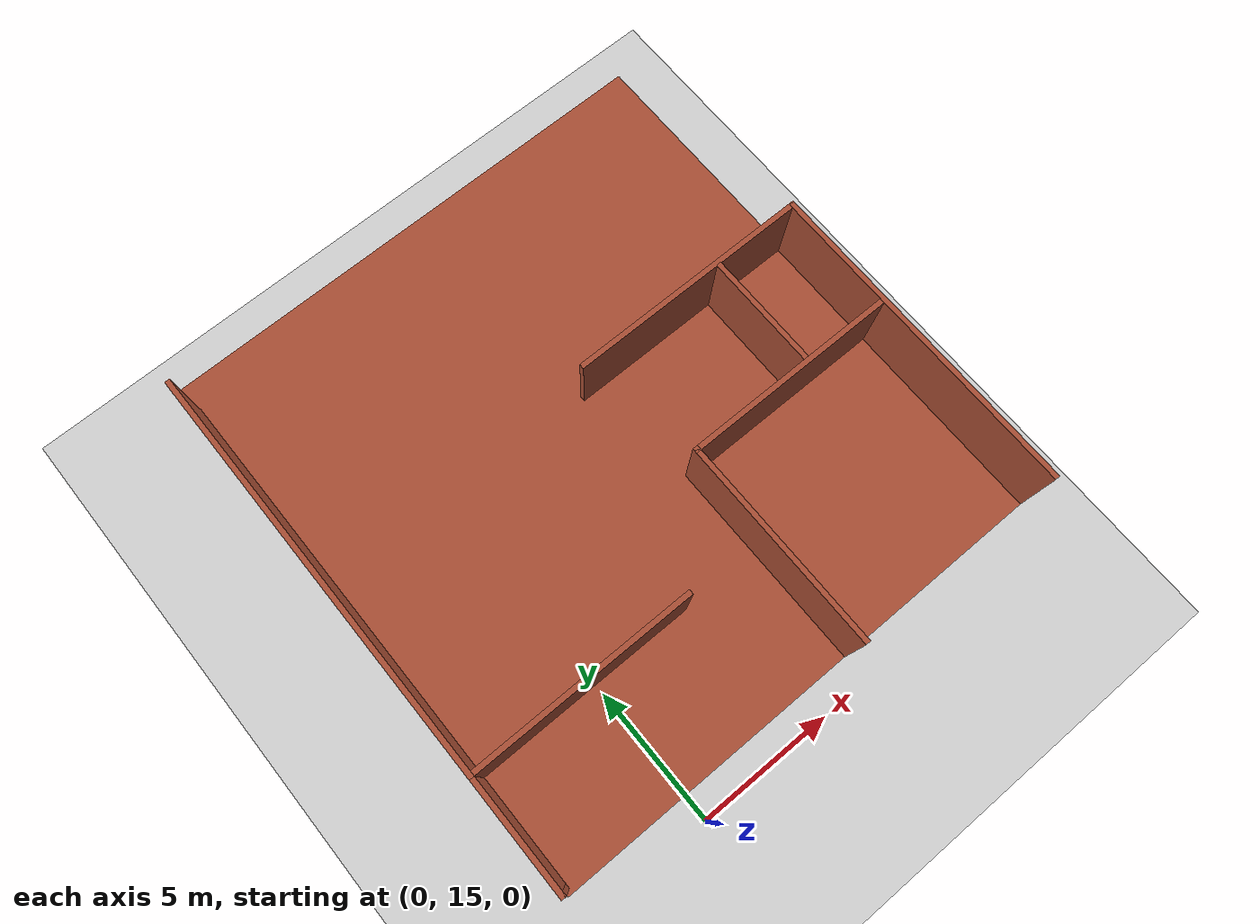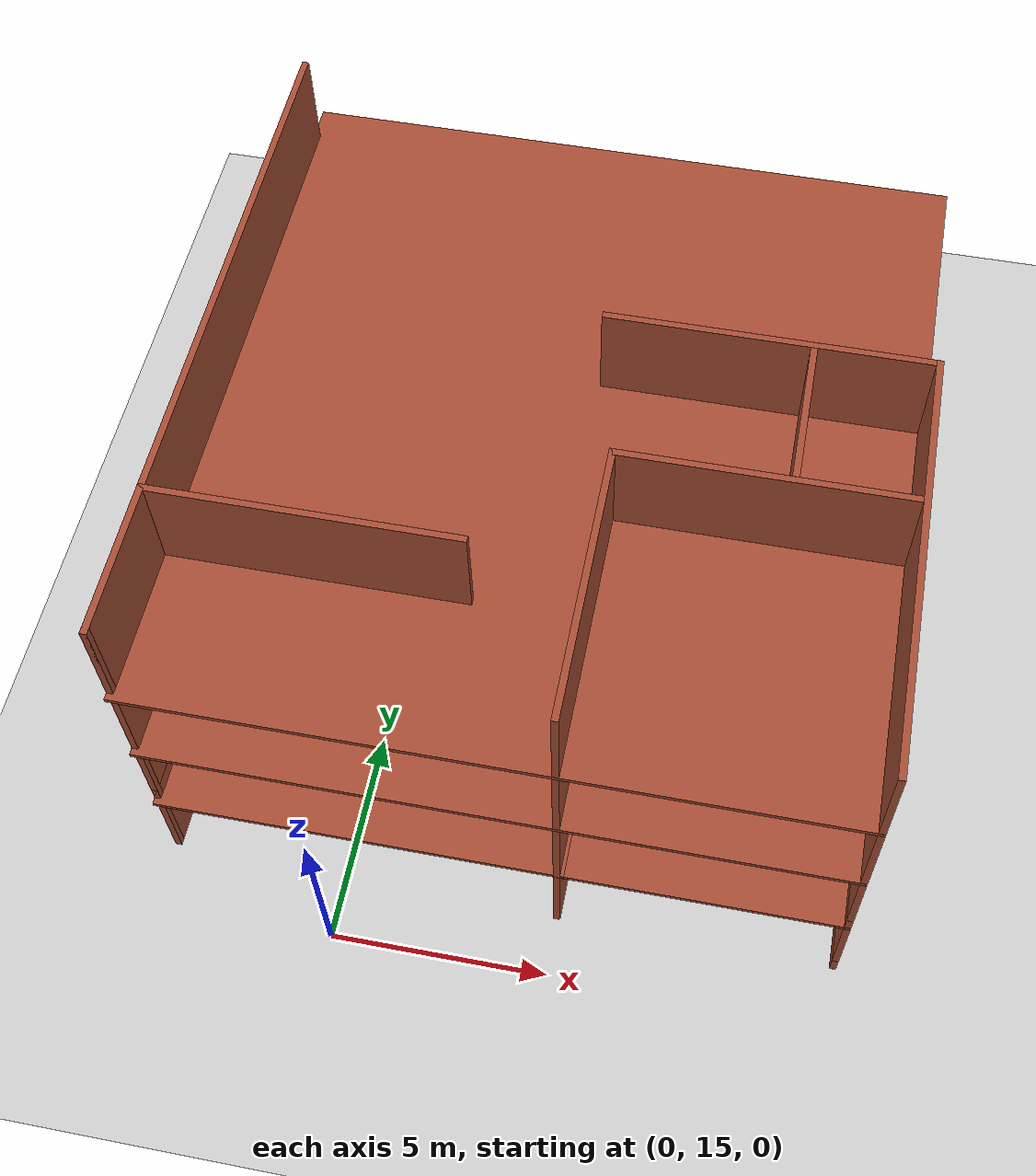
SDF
<sdf version="1.7">
 <world name="default">
  <model name="ground_plane">
   <static>1</static>
   <link name="link">
    <collision name="collision">
     <geometry><plane><normal>0 0 1</normal><size>300 300</size></plane></geometry>
     <surface>
      <contact><collide_bitmask>65535</collide_bitmask></contact>
      <friction><ode><mu>100</mu><mu2>50</mu2></ode></friction>
     </surface>
    </collision>
    <visual name="visual">
     <cast_shadows>0</cast_shadows>
     <geometry><plane><normal>0 0 1</normal><size>300 300</size></plane></geometry>
     <material>
      <script><uri>file://media/materials/scripts/gazebo.material</uri><name>Gazebo/Grey</name></script>
     </material>
    </visual>
   </link>
  </model>
  <model name="Drone_House_1">
   <pose>3.61083 24.7733 0 0 -0 0</pose>
   <link name="Floor_0">
    <pose>-1e-06 0 2.5 0 -0 0</pose>
    <visual name="Floor_0_Visual_0">
     <pose>-3.13292 0 0.05 0 -0 0</pose>
     <geometry><box><size>9.33629 16.85 0.1</size></box></geometry>
     <material>
      <script><uri>file://media/materials/scripts/gazebo.material</uri><name>Gazebo/Bricks</name></script>
      <ambient>1 1 1 1</ambient>
     </material>
     <meta><layer>1</layer></meta>
    </visual>
    <collision name="Floor_0_Collision_0">
     <geometry><box><size>9.33629 16.85 0.1</size></box></geometry>
     <pose>-3.13292 0 0.05 0 -0 0</pose>
    </collision>
    <visual name="Floor_0_Visual_1">
     <pose>4.66814 -4.13229 0.05 0 -0 0</pose>
     <geometry><box><size>6.26584 8.58542 0.1</size></box></geometry>
     <material>
      <script><uri>file://media/materials/scripts/gazebo.material</uri><name>Gazebo/Bricks</name></script>
      <ambient>1 1 1 1</ambient>
     </material>
     <meta><layer>1</layer></meta>
    </visual>
    <collision name="Floor_0_Collision_1">
     <geometry><box><size>6.26584 8.58542 0.1</size></box></geometry>
     <pose>4.66814 -4.13229 0.05 0 -0 0</pose>
    </collision>
    <visual name="Floor_0_Visual_2">
     <pose>6.41814 4.29271 0.05 0 -0 0</pose>
     <geometry><box><size>2.76584 8.26458 0.1</size></box></geometry>
     <material>
      <script><uri>file://media/materials/scripts/gazebo.material</uri><name>Gazebo/Bricks</name></script>
      <ambient>1 1 1 1</ambient>
     </material>
     <meta><layer>1</layer></meta>
    </visual>
    <collision name="Floor_0_Collision_2">
     <geometry><box><size>2.76584 8.26458 0.1</size></box></geometry>
     <pose>6.41814 4.29271 0.05 0 -0 0</pose>
    </collision>
    <visual name="Floor_0_Visual_3">
     <pose>3.28522 4.79271 0.05 0 -0 0</pose>
     <geometry><box><size>3.5 7.26458 0.1</size></box></geometry>
     <material>
      <script><uri>file://media/materials/scripts/gazebo.material</uri><name>Gazebo/Bricks</name></script>
      <ambient>1 1 1 1</ambient>
     </material>
     <meta><layer>1</layer></meta>
    </visual>
    <collision name="Floor_0_Collision_3">
     <geometry><box><size>3.5 7.26458 0.1</size></box></geometry>
     <pose>3.28522 4.79271 0.05 0 -0 0</pose>
    </collision>
   </link>
   <link name="Floor_5">
    <collision name="Floor_5_Collision">
     <geometry><box><size>15.6021 16.85 0.1</size></box></geometry>
     <pose>0 0 0.05 0 -0 0</pose>
    </collision>
    <visual name="Floor_5_Visual">
     <pose>0 0 0.05 0 -0 0</pose>
     <geometry><box><size>15.6021 16.85 0.1</size></box></geometry>
     <material>
      <script><uri>file://media/materials/scripts/gazebo.material</uri><name>Gazebo/Bricks</name></script>
      <ambient>1 1 1 1</ambient>
     </material>
     <meta><layer>2</layer></meta>
    </visual>
    <pose>-1e-06 0 5 0 -0 0</pose>
   </link>
   <link name="Floor_6">
    <collision name="Floor_6_Collision">
     <geometry><box><size>15.6021 16.85 0.1</size></box></geometry>
     <pose>0 0 0.05 0 -0 0</pose>
    </collision>
    <visual name="Floor_6_Visual">
     <pose>0 0 0.05 0 -0 0</pose>
     <geometry><box><size>15.6021 16.85 0.1</size></box></geometry>
     <material>
      <script><uri>file://media/materials/scripts/gazebo.material</uri><name>Gazebo/Bricks</name></script>
      <ambient>1 1 1 1</ambient>
     </material>
     <meta><layer>3</layer></meta>
    </visual>
    <pose>-1e-06 0 7.5 0 -0 0</pose>
   </link>
   <link name="Stairs_0">
    <visual name="Stairs_0_Visual_0">
     <pose>4.91856 0.660416 0.083333 0 -0 -1.5708</pose>
     <geometry><box><size>1 0.233333 0.166667</size></box></geometry>
     <material>
      <script><uri>file://media/materials/scripts/gazebo.material</uri><name>Gazebo/Bricks</name></script>
      <ambient>1 1 1 1</ambient>
     </material>
     <meta><layer>0</layer></meta>
    </visual>
    <collision name="Stairs_0_Collision_0">
     <geometry><box><size>1 0.233333 0.166667</size></box></geometry>
     <pose>4.91856 0.660416 0.083333 0 -0 -1.5708</pose>
    </collision>
    <visual name="Stairs_0_Visual_1">
     <pose>4.68522 0.660416 0.25 0 -0 -1.5708</pose>
     <geometry><box><size>1 0.233333 0.166667</size></box></geometry>
     <material>
      <script><uri>file://media/materials/scripts/gazebo.material</uri><name>Gazebo/Bricks</name></script>
      <ambient>1 1 1 1</ambient>
     </material>
     <meta><layer>0</layer></meta>
    </visual>
    <collision name="Stairs_0_Collision_1">
     <geometry><box><size>1 0.233333 0.166667</size></box></geometry>
     <pose>4.68522 0.660416 0.25 0 -0 -1.5708</pose>
    </collision>
    <visual name="Stairs_0_Visual_2">
     <pose>4.45189 0.660416 0.416667 0 -0 -1.5708</pose>
     <geometry><box><size>1 0.233333 0.166667</size></box></geometry>
     <material>
      <script><uri>file://media/materials/scripts/gazebo.material</uri><name>Gazebo/Bricks</name></script>
      <ambient>1 1 1 1</ambient>
     </material>
     <meta><layer>0</layer></meta>
    </visual>
    <collision name="Stairs_0_Collision_2">
     <geometry><box><size>1 0.233333 0.166667</size></box></geometry>
     <pose>4.45189 0.660416 0.416667 0 -0 -1.5708</pose>
    </collision>
    <visual name="Stairs_0_Visual_3">
     <pose>4.21856 0.660416 0.583333 0 -0 -1.5708</pose>
     <geometry><box><size>1 0.233333 0.166667</size></box></geometry>
     <material>
      <script><uri>file://media/materials/scripts/gazebo.material</uri><name>Gazebo/Bricks</name></script>
      <ambient>1 1 1 1</ambient>
     </material>
     <meta><layer>0</layer></meta>
    </visual>
    <collision name="Stairs_0_Collision_3">
     <geometry><box><size>1 0.233333 0.166667</size></box></geometry>
     <pose>4.21856 0.660416 0.583333 0 -0 -1.5708</pose>
    </collision>
    <visual name="Stairs_0_Visual_4">
     <pose>3.98522 0.660417 0.75 0 -0 -1.5708</pose>
     <geometry><box><size>1 0.233333 0.166667</size></box></geometry>
     <material>
      <script><uri>file://media/materials/scripts/gazebo.material</uri><name>Gazebo/Bricks</name></script>
      <ambient>1 1 1 1</ambient>
     </material>
     <meta><layer>0</layer></meta>
    </visual>
    <collision name="Stairs_0_Collision_4">
     <geometry><box><size>1 0.233333 0.166667</size></box></geometry>
     <pose>3.98522 0.660417 0.75 0 -0 -1.5708</pose>
    </collision>
    <visual name="Stairs_0_Visual_5">
     <pose>3.75189 0.660417 0.916667 0 -0 -1.5708</pose>
     <geometry><box><size>1 0.233333 0.166667</size></box></geometry>
     <material>
      <script><uri>file://media/materials/scripts/gazebo.material</uri><name>Gazebo/Bricks</name></script>
      <ambient>1 1 1 1</ambient>
     </material>
     <meta><layer>0</layer></meta>
    </visual>
    <collision name="Stairs_0_Collision_5">
     <geometry><box><size>1 0.233333 0.166667</size></box></geometry>
     <pose>3.75189 0.660417 0.916667 0 -0 -1.5708</pose>
    </collision>
    <visual name="Stairs_0_Visual_6">
     <pose>3.51856 0.660417 1.08333 0 -0 -1.5708</pose>
     <geometry><box><size>1 0.233333 0.166667</size></box></geometry>
     <material>
      <script><uri>file://media/materials/scripts/gazebo.material</uri><name>Gazebo/Bricks</name></script>
      <ambient>1 1 1 1</ambient>
     </material>
     <meta><layer>0</layer></meta>
    </visual>
    <collision name="Stairs_0_Collision_6">
     <geometry><box><size>1 0.233333 0.166667</size></box></geometry>
     <pose>3.51856 0.660417 1.08333 0 -0 -1.5708</pose>
    </collision>
    <visual name="Stairs_0_Visual_7">
     <pose>3.28522 0.660417 1.25 0 -0 -1.5708</pose>
     <geometry><box><size>1 0.233333 0.166667</size></box></geometry>
     <material>
      <script><uri>file://media/materials/scripts/gazebo.material</uri><name>Gazebo/Bricks</name></script>
      <ambient>1 1 1 1</ambient>
     </material>
     <meta><layer>0</layer></meta>
    </visual>
    <collision name="Stairs_0_Collision_7">
     <geometry><box><size>1 0.233333 0.166667</size></box></geometry>
     <pose>3.28522 0.660417 1.25 0 -0 -1.5708</pose>
    </collision>
    <visual name="Stairs_0_Visual_8">
     <pose>3.05189 0.660417 1.41667 0 -0 -1.5708</pose>
     <geometry><box><size>1 0.233333 0.166667</size></box></geometry>
     <material>
      <script><uri>file://media/materials/scripts/gazebo.material</uri><name>Gazebo/Bricks</name></script>
      <ambient>1 1 1 1</ambient>
     </material>
     <meta><layer>0</layer></meta>
    </visual>
    <collision name="Stairs_0_Collision_8">
     <geometry><box><size>1 0.233333 0.166667</size></box></geometry>
     <pose>3.05189 0.660417 1.41667 0 -0 -1.5708</pose>
    </collision>
    <visual name="Stairs_0_Visual_9">
     <pose>2.81856 0.660417 1.58333 0 -0 -1.5708</pose>
     <geometry><box><size>1 0.233333 0.166667</size></box></geometry>
     <material>
      <script><uri>file://media/materials/scripts/gazebo.material</uri><name>Gazebo/Bricks</name></script>
      <ambient>1 1 1 1</ambient>
     </material>
     <meta><layer>0</layer></meta>
    </visual>
    <collision name="Stairs_0_Collision_9">
     <geometry><box><size>1 0.233333 0.166667</size></box></geometry>
     <pose>2.81856 0.660417 1.58333 0 -0 -1.5708</pose>
    </collision>
    <visual name="Stairs_0_Visual_10">
     <pose>2.58522 0.660417 1.75 0 -0 -1.5708</pose>
     <geometry><box><size>1 0.233333 0.166667</size></box></geometry>
     <material>
      <script><uri>file://media/materials/scripts/gazebo.material</uri><name>Gazebo/Bricks</name></script>
      <ambient>1 1 1 1</ambient>
     </material>
     <meta><layer>0</layer></meta>
    </visual>
    <collision name="Stairs_0_Collision_10">
     <geometry><box><size>1 0.233333 0.166667</size></box></geometry>
     <pose>2.58522 0.660417 1.75 0 -0 -1.5708</pose>
    </collision>
    <visual name="Stairs_0_Visual_11">
     <pose>2.35189 0.660417 1.91667 0 -0 -1.5708</pose>
     <geometry><box><size>1 0.233333 0.166667</size></box></geometry>
     <material>
      <script><uri>file://media/materials/scripts/gazebo.material</uri><name>Gazebo/Bricks</name></script>
      <ambient>1 1 1 1</ambient>
     </material>
     <meta><layer>0</layer></meta>
    </visual>
    <collision name="Stairs_0_Collision_11">
     <geometry><box><size>1 0.233333 0.166667</size></box></geometry>
     <pose>2.35189 0.660417 1.91667 0 -0 -1.5708</pose>
    </collision>
    <visual name="Stairs_0_Visual_12">
     <pose>2.11856 0.660417 2.08333 0 -0 -1.5708</pose>
     <geometry><box><size>1 0.233333 0.166667</size></box></geometry>
     <material>
      <script><uri>file://media/materials/scripts/gazebo.material</uri><name>Gazebo/Bricks</name></script>
      <ambient>1 1 1 1</ambient>
     </material>
     <meta><layer>0</layer></meta>
    </visual>
    <collision name="Stairs_0_Collision_12">
     <geometry><box><size>1 0.233333 0.166667</size></box></geometry>
     <pose>2.11856 0.660417 2.08333 0 -0 -1.5708</pose>
    </collision>
    <visual name="Stairs_0_Visual_13">
     <pose>1.88522 0.660417 2.25 0 -0 -1.5708</pose>
     <geometry><box><size>1 0.233333 0.166667</size></box></geometry>
     <material>
      <script><uri>file://media/materials/scripts/gazebo.material</uri><name>Gazebo/Bricks</name></script>
      <ambient>1 1 1 1</ambient>
     </material>
     <meta><layer>0</layer></meta>
    </visual>
    <collision name="Stairs_0_Collision_13">
     <geometry><box><size>1 0.233333 0.166667</size></box></geometry>
     <pose>1.88522 0.660417 2.25 0 -0 -1.5708</pose>
    </collision>
    <visual name="Stairs_0_Visual_14">
     <pose>1.65189 0.660417 2.41667 0 -0 -1.5708</pose>
     <geometry><box><size>1 0.233333 0.166667</size></box></geometry>
     <material>
      <script><uri>file://media/materials/scripts/gazebo.material</uri><name>Gazebo/Bricks</name></script>
      <ambient>1 1 1 1</ambient>
     </material>
     <meta><layer>0</layer></meta>
    </visual>
    <collision name="Stairs_0_Collision_14">
     <geometry><box><size>1 0.233333 0.166667</size></box></geometry>
     <pose>1.65189 0.660417 2.41667 0 -0 -1.5708</pose>
    </collision>
   </link>
   <link name="Wall_100">
    <collision name="Wall_100_Collision">
     <geometry><box><size>6.25 0.15 2.5</size></box></geometry>
     <pose>0 0 1.25 0 -0 0</pose>
    </collision>
    <visual name="Wall_100_Visual">
     <pose>0 0 1.25 0 -0 0</pose>
     <geometry><box><size>6.25 0.15 2.5</size></box></geometry>
     <material>
      <script><uri>file://media/materials/scripts/gazebo.material</uri><name>Gazebo/Bricks</name></script>
      <ambient>1 1 1 1</ambient>
     </material>
     <meta><layer>2</layer></meta>
    </visual>
    <pose>1.37606 -5.3 5 0 -0 1.5708</pose>
   </link>
   <link name="Wall_101">
    <collision name="Wall_101_Collision">
     <geometry><box><size>6.5 0.15 2.5</size></box></geometry>
     <pose>0 0 1.25 0 -0 0</pose>
    </collision>
    <visual name="Wall_101_Visual">
     <pose>0 0 1.25 0 -0 0</pose>
     <geometry><box><size>6.5 0.15 2.5</size></box></geometry>
     <material>
      <script><uri>file://media/materials/scripts/gazebo.material</uri><name>Gazebo/Bricks</name></script>
      <ambient>1 1 1 1</ambient>
     </material>
     <meta><layer>2</layer></meta>
    </visual>
    <pose>4.55106 -2.25 5 0 -0 0</pose>
   </link>
   <link name="Wall_102">
    <collision name="Wall_102_Collision">
     <geometry><box><size>3.5 0.15 2.5</size></box></geometry>
     <pose>0 0 1.25 0 -0 0</pose>
    </collision>
    <visual name="Wall_102_Visual">
     <pose>0 0 1.25 0 -0 0</pose>
     <geometry><box><size>3.5 0.15 2.5</size></box></geometry>
     <material>
      <script><uri>file://media/materials/scripts/gazebo.material</uri><name>Gazebo/Bricks</name></script>
      <ambient>1 1 1 1</ambient>
     </material>
     <meta><layer>2</layer></meta>
    </visual>
    <pose>-7.72394 -6.525 5 0 -0 -1.5708</pose>
   </link>
   <link name="Wall_105">
    <collision name="Wall_105_Collision">
     <geometry><box><size>3.5 0.15 2.5</size></box></geometry>
     <pose>0 0 1.25 0 -0 0</pose>
    </collision>
    <visual name="Wall_105_Visual">
     <pose>0 0 1.25 0 -0 0</pose>
     <geometry><box><size>3.5 0.15 2.5</size></box></geometry>
     <material>
      <script><uri>file://media/materials/scripts/gazebo.material</uri><name>Gazebo/Bricks</name></script>
      <ambient>1 1 1 1</ambient>
     </material>
     <meta><layer>2</layer></meta>
    </visual>
    <pose>5.09404 -0.429379 5 0 -0 -1.5708</pose>
   </link>
   <link name="Wall_106">
    <collision name="Wall_106_Collision">
     <geometry><box><size>12.5 0.15 2.5</size></box></geometry>
     <pose>0 0 1.25 0 -0 0</pose>
    </collision>
    <visual name="Wall_106_Visual">
     <pose>0 0 1.25 0 -0 0</pose>
     <geometry><box><size>12.5 0.15 2.5</size></box></geometry>
     <material>
      <script><uri>file://media/materials/scripts/gazebo.material</uri><name>Gazebo/Bricks</name></script>
      <ambient>1 1 1 1</ambient>
     </material>
     <meta><layer>3</layer></meta>
    </visual>
    <pose>-7.72394 1.325 7.5 0 -0 -1.5708</pose>
   </link>
   <link name="Wall_107">
    <collision name="Wall_107_Collision">
     <geometry><box><size>6.75 0.15 2.5</size></box></geometry>
     <pose>0 0 1.25 0 -0 0</pose>
    </collision>
    <visual name="Wall_107_Visual">
     <pose>0 0 1.25 0 -0 0</pose>
     <geometry><box><size>6.75 0.15 2.5</size></box></geometry>
     <material>
      <script><uri>file://media/materials/scripts/gazebo.material</uri><name>Gazebo/Bricks</name></script>
      <ambient>1 1 1 1</ambient>
     </material>
     <meta><layer>3</layer></meta>
    </visual>
    <pose>-4.42394 -4.85 7.5 0 -0 0</pose>
   </link>
   <link name="Wall_117">
    <collision name="Wall_117_Collision">
     <geometry><box><size>7.25 0.15 2.5</size></box></geometry>
     <pose>0 0 1.25 0 -0 0</pose>
    </collision>
    <visual name="Wall_117_Visual">
     <pose>0 0 1.25 0 -0 0</pose>
     <geometry><box><size>7.25 0.15 2.5</size></box></geometry>
     <material>
      <script><uri>file://media/materials/scripts/gazebo.material</uri><name>Gazebo/Bricks</name></script>
      <ambient>1 1 1 1</ambient>
     </material>
     <meta><layer>3</layer></meta>
    </visual>
    <pose>4.17606 1.25 7.5 0 -0 0</pose>
   </link>
   <link name="Wall_120">
    <collision name="Wall_120_Collision">
     <geometry><box><size>9.75 0.15 2.5</size></box></geometry>
     <pose>0 0 1.25 0 -0 0</pose>
    </collision>
    <visual name="Wall_120_Visual">
     <pose>0 0 1.25 0 -0 0</pose>
     <geometry><box><size>9.75 0.15 2.5</size></box></geometry>
     <material>
      <script><uri>file://media/materials/scripts/gazebo.material</uri><name>Gazebo/Bricks</name></script>
      <ambient>1 1 1 1</ambient>
     </material>
     <meta><layer>3</layer></meta>
    </visual>
    <pose>7.72606 -3.55 7.5 0 -0 -1.5708</pose>
   </link>
   <link name="Wall_122">
    <collision name="Wall_122_Collision">
     <geometry><box><size>6.25 0.15 2.5</size></box></geometry>
     <pose>0 0 1.25 0 -0 0</pose>
    </collision>
    <visual name="Wall_122_Visual">
     <pose>0 0 1.25 0 -0 0</pose>
     <geometry><box><size>6.25 0.15 2.5</size></box></geometry>
     <material>
      <script><uri>file://media/materials/scripts/gazebo.material</uri><name>Gazebo/Bricks</name></script>
      <ambient>1 1 1 1</ambient>
     </material>
     <meta><layer>3</layer></meta>
    </visual>
    <pose>1.37606 -5.3 7.5 0 -0 1.5708</pose>
   </link>
   <link name="Wall_123">
    <collision name="Wall_123_Collision">
     <geometry><box><size>6.5 0.15 2.5</size></box></geometry>
     <pose>0 0 1.25 0 -0 0</pose>
    </collision>
    <visual name="Wall_123_Visual">
     <pose>0 0 1.25 0 -0 0</pose>
     <geometry><box><size>6.5 0.15 2.5</size></box></geometry>
     <material>
      <script><uri>file://media/materials/scripts/gazebo.material</uri><name>Gazebo/Bricks</name></script>
      <ambient>1 1 1 1</ambient>
     </material>
     <meta><layer>3</layer></meta>
    </visual>
    <pose>4.55106 -2.25 7.5 0 -0 0</pose>
   </link>
   <link name="Wall_124">
    <collision name="Wall_124_Collision">
     <geometry><box><size>3.5 0.15 2.5</size></box></geometry>
     <pose>0 0 1.25 0 -0 0</pose>
    </collision>
    <visual name="Wall_124_Visual">
     <pose>0 0 1.25 0 -0 0</pose>
     <geometry><box><size>3.5 0.15 2.5</size></box></geometry>
     <material>
      <script><uri>file://media/materials/scripts/gazebo.material</uri><name>Gazebo/Bricks</name></script>
      <ambient>1 1 1 1</ambient>
     </material>
     <meta><layer>3</layer></meta>
    </visual>
    <pose>-7.72394 -6.525 7.5 0 -0 -1.5708</pose>
   </link>
   <link name="Wall_125">
    <collision name="Wall_125_Collision">
     <geometry><box><size>0.15 0.15 2.5</size></box></geometry>
     <pose>0 0 1.25 0 -0 0</pose>
    </collision>
    <visual name="Wall_125_Visual">
     <pose>0 0 1.25 0 -0 0</pose>
     <geometry><box><size>0.15 0.15 2.5</size></box></geometry>
     <material>
      <script><uri>file://media/materials/scripts/gazebo.material</uri><name>Gazebo/Bricks</name></script>
      <ambient>1 1 1 1</ambient>
     </material>
     <meta><layer>3</layer></meta>
    </visual>
    <pose>-7.72394 -8.2 7.5 0 -0 0</pose>
   </link>
   <link name="Wall_127">
    <collision name="Wall_127_Collision">
     <geometry><box><size>3.5 0.15 2.5</size></box></geometry>
     <pose>0 0 1.25 0 -0 0</pose>
    </collision>
    <visual name="Wall_127_Visual">
     <pose>0 0 1.25 0 -0 0</pose>
     <geometry><box><size>3.5 0.15 2.5</size></box></geometry>
     <material>
      <script><uri>file://media/materials/scripts/gazebo.material</uri><name>Gazebo/Bricks</name></script>
      <ambient>1 1 1 1</ambient>
     </material>
     <meta><layer>3</layer></meta>
    </visual>
    <pose>5.09404 -0.429379 7.5 0 -0 -1.5708</pose>
   </link>
   <link name="Wall_19">
    <collision name="Wall_19_Collision">
     <geometry><box><size>7.25 0.15 2.5</size></box></geometry>
     <pose>0 0 1.25 0 -0 0</pose>
    </collision>
    <visual name="Wall_19_Visual">
     <pose>0 0 1.25 0 -0 0</pose>
     <geometry><box><size>7.25 0.15 2.5</size></box></geometry>
     <material>
      <script><uri>file://media/materials/scripts/gazebo.material</uri><name>Gazebo/Bricks</name></script>
      <ambient>1 1 1 1</ambient>
     </material>
     <meta><layer>0</layer></meta>
    </visual>
    <pose>4.17606 1.25 0 0 -0 0</pose>
   </link>
   <link name="Wall_23">
    <pose>7.72606 -3.55 0 0 -0 -1.5708</pose>
    <visual name="Wall_23_Visual_0">
     <pose>-1.69699 0 1.25 0 -0 0</pose>
     <geometry><box><size>6.35603 0.15 2.5</size></box></geometry>
     <material>
      <script><uri>file://media/materials/scripts/gazebo.material</uri><name>Gazebo/Bricks</name></script>
      <ambient>1 1 1 1</ambient>
     </material>
     <meta><layer>0</layer></meta>
    </visual>
    <collision name="Wall_23_Collision_0">
     <geometry><box><size>6.35603 0.15 2.5</size></box></geometry>
     <pose>-1.69699 0 1.25 0 -0 0</pose>
    </collision>
    <visual name="Wall_23_Visual_1">
     <pose>3.17801 0 0.25 0 -0 0</pose>
     <geometry><box><size>3.39397 0.15 0.5</size></box></geometry>
     <material>
      <script><uri>file://media/materials/scripts/gazebo.material</uri><name>Gazebo/Bricks</name></script>
      <ambient>1 1 1 1</ambient>
     </material>
     <meta><layer>0</layer></meta>
    </visual>
    <collision name="Wall_23_Collision_1">
     <geometry><box><size>3.39397 0.15 0.5</size></box></geometry>
     <pose>3.17801 0 0.25 0 -0 0</pose>
    </collision>
    <visual name="Wall_23_Visual_2">
     <pose>3.57801 0 1.5 0 -0 0</pose>
     <geometry><box><size>2.59397 0.15 2</size></box></geometry>
     <material>
      <script><uri>file://media/materials/scripts/gazebo.material</uri><name>Gazebo/Bricks</name></script>
      <ambient>1 1 1 1</ambient>
     </material>
     <meta><layer>0</layer></meta>
    </visual>
    <collision name="Wall_23_Collision_2">
     <geometry><box><size>2.59397 0.15 2</size></box></geometry>
     <pose>3.57801 0 1.5 0 -0 0</pose>
    </collision>
    <visual name="Wall_23_Visual_3">
     <pose>1.88103 0 1.9 0 -0 0</pose>
     <geometry><box><size>0.8 0.15 1.2</size></box></geometry>
     <material>
      <script><uri>file://media/materials/scripts/gazebo.material</uri><name>Gazebo/Bricks</name></script>
      <ambient>1 1 1 1</ambient>
     </material>
     <meta><layer>0</layer></meta>
    </visual>
    <collision name="Wall_23_Collision_3">
     <geometry><box><size>0.8 0.15 1.2</size></box></geometry>
     <pose>1.88103 0 1.9 0 -0 0</pose>
    </collision>
   </link>
   <link name="Wall_25">
    <collision name="Wall_25_Collision">
     <geometry><box><size>6.25 0.15 2.5</size></box></geometry>
     <pose>0 0 1.25 0 -0 0</pose>
    </collision>
    <visual name="Wall_25_Visual">
     <pose>0 0 1.25 0 -0 0</pose>
     <geometry><box><size>6.25 0.15 2.5</size></box></geometry>
     <material>
      <script><uri>file://media/materials/scripts/gazebo.material</uri><name>Gazebo/Bricks</name></script>
      <ambient>1 1 1 1</ambient>
     </material>
     <meta><layer>0</layer></meta>
    </visual>
    <pose>1.37606 -5.3 0 0 -0 1.5708</pose>
   </link>
   <link name="Wall_26">
    <pose>4.55106 -2.25 0 0 -0 0</pose>
    <visual name="Wall_26_Visual_0">
     <pose>-2.77552 0 1.25 0 -0 0</pose>
     <geometry><box><size>0.948955 0.15 2.5</size></box></geometry>
     <material>
      <script><uri>file://media/materials/scripts/gazebo.material</uri><name>Gazebo/Bricks</name></script>
      <ambient>1 1 1 1</ambient>
     </material>
     <meta><layer>0</layer></meta>
    </visual>
    <collision name="Wall_26_Collision_0">
     <geometry><box><size>0.948955 0.15 2.5</size></box></geometry>
     <pose>-2.77552 0 1.25 0 -0 0</pose>
    </collision>
    <visual name="Wall_26_Visual_1">
     <pose>0.924477 0 1.25 0 -0 0</pose>
     <geometry><box><size>4.65104 0.15 2.5</size></box></geometry>
     <material>
      <script><uri>file://media/materials/scripts/gazebo.material</uri><name>Gazebo/Bricks</name></script>
      <ambient>1 1 1 1</ambient>
     </material>
     <meta><layer>0</layer></meta>
    </visual>
    <collision name="Wall_26_Collision_1">
     <geometry><box><size>4.65104 0.15 2.5</size></box></geometry>
     <pose>0.924477 0 1.25 0 -0 0</pose>
    </collision>
    <visual name="Wall_26_Visual_2">
     <pose>-1.85105 0 2.25 0 -0 0</pose>
     <geometry><box><size>0.9 0.15 0.5</size></box></geometry>
     <material>
      <script><uri>file://media/materials/scripts/gazebo.material</uri><name>Gazebo/Bricks</name></script>
      <ambient>1 1 1 1</ambient>
     </material>
     <meta><layer>0</layer></meta>
    </visual>
    <collision name="Wall_26_Collision_2">
     <geometry><box><size>0.9 0.15 0.5</size></box></geometry>
     <pose>-1.85105 0 2.25 0 -0 0</pose>
    </collision>
   </link>
   <link name="Wall_28">
    <collision name="Wall_28_Collision">
     <geometry><box><size>3.5 0.15 2.5</size></box></geometry>
     <pose>0 0 1.25 0 -0 0</pose>
    </collision>
    <visual name="Wall_28_Visual">
     <pose>0 0 1.25 0 -0 0</pose>
     <geometry><box><size>3.5 0.15 2.5</size></box></geometry>
     <material>
      <script><uri>file://media/materials/scripts/gazebo.material</uri><name>Gazebo/Bricks</name></script>
      <ambient>1 1 1 1</ambient>
     </material>
     <meta><layer>0</layer></meta>
    </visual>
    <pose>-7.72394 -6.525 0 0 -0 -1.5708</pose>
   </link>
   <link name="Wall_29">
    <collision name="Wall_29_Collision">
     <geometry><box><size>0.15 0.15 2.5</size></box></geometry>
     <pose>0 0 1.25 0 -0 0</pose>
    </collision>
    <visual name="Wall_29_Visual">
     <pose>0 0 1.25 0 -0 0</pose>
     <geometry><box><size>0.15 0.15 2.5</size></box></geometry>
     <material>
      <script><uri>file://media/materials/scripts/gazebo.material</uri><name>Gazebo/Bricks</name></script>
      <ambient>1 1 1 1</ambient>
     </material>
     <meta><layer>0</layer></meta>
    </visual>
    <pose>-7.72394 -8.2 0 0 -0 0</pose>
   </link>
   <link name="Wall_33">
    <pose>5.09404 -0.429379 0 0 -0 -1.5708</pose>
    <visual name="Wall_33_Visual_0">
     <pose>-0.793691 0 1.25 0 -0 0</pose>
     <geometry><box><size>1.91262 0.15 2.5</size></box></geometry>
     <material>
      <script><uri>file://media/materials/scripts/gazebo.material</uri><name>Gazebo/Bricks</name></script>
      <ambient>1 1 1 1</ambient>
     </material>
     <meta><layer>0</layer></meta>
    </visual>
    <collision name="Wall_33_Collision_0">
     <geometry><box><size>1.91262 0.15 2.5</size></box></geometry>
     <pose>-0.793691 0 1.25 0 -0 0</pose>
    </collision>
    <visual name="Wall_33_Visual_1">
     <pose>1.40631 0 1.25 0 -0 0</pose>
     <geometry><box><size>0.687383 0.15 2.5</size></box></geometry>
     <material>
      <script><uri>file://media/materials/scripts/gazebo.material</uri><name>Gazebo/Bricks</name></script>
      <ambient>1 1 1 1</ambient>
     </material>
     <meta><layer>0</layer></meta>
    </visual>
    <collision name="Wall_33_Collision_1">
     <geometry><box><size>0.687383 0.15 2.5</size></box></geometry>
     <pose>1.40631 0 1.25 0 -0 0</pose>
    </collision>
    <visual name="Wall_33_Visual_2">
     <pose>0.612617 0 2.25 0 -0 0</pose>
     <geometry><box><size>0.9 0.15 0.5</size></box></geometry>
     <material>
      <script><uri>file://media/materials/scripts/gazebo.material</uri><name>Gazebo/Bricks</name></script>
      <ambient>1 1 1 1</ambient>
     </material>
     <meta><layer>0</layer></meta>
    </visual>
    <collision name="Wall_33_Collision_2">
     <geometry><box><size>0.9 0.15 0.5</size></box></geometry>
     <pose>0.612617 0 2.25 0 -0 0</pose>
    </collision>
   </link>
   <link name="Wall_35">
    <pose>-7.72394 1.325 2.5 0 -0 -1.5708</pose>
    <visual name="Wall_35_Visual_0">
     <pose>-1.7824 0 1.25 0 -0 0</pose>
     <geometry><box><size>8.9352 0.15 2.5</size></box></geometry>
     <material>
      <script><uri>file://media/materials/scripts/gazebo.material</uri><name>Gazebo/Bricks</name></script>
      <ambient>1 1 1 1</ambient>
     </material>
     <meta><layer>1</layer></meta>
    </visual>
    <collision name="Wall_35_Collision_0">
     <geometry><box><size>8.9352 0.15 2.5</size></box></geometry>
     <pose>-1.7824 0 1.25 0 -0 0</pose>
    </collision>
    <visual name="Wall_35_Visual_1">
     <pose>4.4676 0 0.25 0 -0 0</pose>
     <geometry><box><size>3.5648 0.15 0.5</size></box></geometry>
     <material>
      <script><uri>file://media/materials/scripts/gazebo.material</uri><name>Gazebo/Bricks</name></script>
      <ambient>1 1 1 1</ambient>
     </material>
     <meta><layer>1</layer></meta>
    </visual>
    <collision name="Wall_35_Collision_1">
     <geometry><box><size>3.5648 0.15 0.5</size></box></geometry>
     <pose>4.4676 0 0.25 0 -0 0</pose>
    </collision>
    <visual name="Wall_35_Visual_2">
     <pose>4.8676 0 1.5 0 -0 0</pose>
     <geometry><box><size>2.7648 0.15 2</size></box></geometry>
     <material>
      <script><uri>file://media/materials/scripts/gazebo.material</uri><name>Gazebo/Bricks</name></script>
      <ambient>1 1 1 1</ambient>
     </material>
     <meta><layer>1</layer></meta>
    </visual>
    <collision name="Wall_35_Collision_2">
     <geometry><box><size>2.7648 0.15 2</size></box></geometry>
     <pose>4.8676 0 1.5 0 -0 0</pose>
    </collision>
    <visual name="Wall_35_Visual_3">
     <pose>3.0852 0 1.9 0 -0 0</pose>
     <geometry><box><size>0.8 0.15 1.2</size></box></geometry>
     <material>
      <script><uri>file://media/materials/scripts/gazebo.material</uri><name>Gazebo/Bricks</name></script>
      <ambient>1 1 1 1</ambient>
     </material>
     <meta><layer>1</layer></meta>
    </visual>
    <collision name="Wall_35_Collision_3">
     <geometry><box><size>0.8 0.15 1.2</size></box></geometry>
     <pose>3.0852 0 1.9 0 -0 0</pose>
    </collision>
   </link>
   <link name="Wall_36">
    <pose>-4.42394 -4.85 2.5 0 -0 0</pose>
    <visual name="Wall_36_Visual_0">
     <pose>-1.98145 0 1.25 0 -0 0</pose>
     <geometry><box><size>2.7871 0.15 2.5</size></box></geometry>
     <material>
      <script><uri>file://media/materials/scripts/gazebo.material</uri><name>Gazebo/Bricks</name></script>
      <ambient>1 1 1 1</ambient>
     </material>
     <meta><layer>1</layer></meta>
    </visual>
    <collision name="Wall_36_Collision_0">
     <geometry><box><size>2.7871 0.15 2.5</size></box></geometry>
     <pose>-1.98145 0 1.25 0 -0 0</pose>
    </collision>
    <visual name="Wall_36_Visual_1">
     <pose>1.84355 0 1.25 0 -0 0</pose>
     <geometry><box><size>3.0629 0.15 2.5</size></box></geometry>
     <material>
      <script><uri>file://media/materials/scripts/gazebo.material</uri><name>Gazebo/Bricks</name></script>
      <ambient>1 1 1 1</ambient>
     </material>
     <meta><layer>1</layer></meta>
    </visual>
    <collision name="Wall_36_Collision_1">
     <geometry><box><size>3.0629 0.15 2.5</size></box></geometry>
     <pose>1.84355 0 1.25 0 -0 0</pose>
    </collision>
    <visual name="Wall_36_Visual_2">
     <pose>-0.1379 0 2.25 0 -0 0</pose>
     <geometry><box><size>0.9 0.15 0.5</size></box></geometry>
     <material>
      <script><uri>file://media/materials/scripts/gazebo.material</uri><name>Gazebo/Bricks</name></script>
      <ambient>1 1 1 1</ambient>
     </material>
     <meta><layer>1</layer></meta>
    </visual>
    <collision name="Wall_36_Collision_2">
     <geometry><box><size>0.9 0.15 0.5</size></box></geometry>
     <pose>-0.1379 0 2.25 0 -0 0</pose>
    </collision>
   </link>
   <link name="Wall_46">
    <collision name="Wall_46_Collision">
     <geometry><box><size>7.25 0.15 2.5</size></box></geometry>
     <pose>0 0 1.25 0 -0 0</pose>
    </collision>
    <visual name="Wall_46_Visual">
     <pose>0 0 1.25 0 -0 0</pose>
     <geometry><box><size>7.25 0.15 2.5</size></box></geometry>
     <material>
      <script><uri>file://media/materials/scripts/gazebo.material</uri><name>Gazebo/Bricks</name></script>
      <ambient>1 1 1 1</ambient>
     </material>
     <meta><layer>1</layer></meta>
    </visual>
    <pose>4.17606 1.25 2.5 0 -0 0</pose>
   </link>
   <link name="Wall_49">
    <pose>7.72606 -3.55 2.5 0 -0 -1.5708</pose>
    <visual name="Wall_49_Visual_0">
     <pose>-1.77679 0 1.25 0 -0 0</pose>
     <geometry><box><size>6.19643 0.15 2.5</size></box></geometry>
     <material>
      <script><uri>file://media/materials/scripts/gazebo.material</uri><name>Gazebo/Bricks</name></script>
      <ambient>1 1 1 1</ambient>
     </material>
     <meta><layer>1</layer></meta>
    </visual>
    <collision name="Wall_49_Collision_0">
     <geometry><box><size>6.19643 0.15 2.5</size></box></geometry>
     <pose>-1.77679 0 1.25 0 -0 0</pose>
    </collision>
    <visual name="Wall_49_Visual_1">
     <pose>3.09821 0 0.25 0 -0 0</pose>
     <geometry><box><size>3.55357 0.15 0.5</size></box></geometry>
     <material>
      <script><uri>file://media/materials/scripts/gazebo.material</uri><name>Gazebo/Bricks</name></script>
      <ambient>1 1 1 1</ambient>
     </material>
     <meta><layer>1</layer></meta>
    </visual>
    <collision name="Wall_49_Collision_1">
     <geometry><box><size>3.55357 0.15 0.5</size></box></geometry>
     <pose>3.09821 0 0.25 0 -0 0</pose>
    </collision>
    <visual name="Wall_49_Visual_2">
     <pose>3.49821 0 1.5 0 -0 0</pose>
     <geometry><box><size>2.75357 0.15 2</size></box></geometry>
     <material>
      <script><uri>file://media/materials/scripts/gazebo.material</uri><name>Gazebo/Bricks</name></script>
      <ambient>1 1 1 1</ambient>
     </material>
     <meta><layer>1</layer></meta>
    </visual>
    <collision name="Wall_49_Collision_2">
     <geometry><box><size>2.75357 0.15 2</size></box></geometry>
     <pose>3.49821 0 1.5 0 -0 0</pose>
    </collision>
    <visual name="Wall_49_Visual_3">
     <pose>1.72143 0 1.9 0 -0 0</pose>
     <geometry><box><size>0.8 0.15 1.2</size></box></geometry>
     <material>
      <script><uri>file://media/materials/scripts/gazebo.material</uri><name>Gazebo/Bricks</name></script>
      <ambient>1 1 1 1</ambient>
     </material>
     <meta><layer>1</layer></meta>
    </visual>
    <collision name="Wall_49_Collision_3">
     <geometry><box><size>0.8 0.15 1.2</size></box></geometry>
     <pose>1.72143 0 1.9 0 -0 0</pose>
    </collision>
   </link>
   <link name="Wall_5">
    <pose>-4.42394 -4.85 0 0 -0 0</pose>
    <visual name="Wall_5_Visual_0">
     <pose>-1.88995 0 1.25 0 -0 0</pose>
     <geometry><box><size>2.9701 0.15 2.5</size></box></geometry>
     <material>
      <script><uri>file://media/materials/scripts/gazebo.material</uri><name>Gazebo/Bricks</name></script>
      <ambient>1 1 1 1</ambient>
     </material>
     <meta><layer>0</layer></meta>
    </visual>
    <collision name="Wall_5_Collision_0">
     <geometry><box><size>2.9701 0.15 2.5</size></box></geometry>
     <pose>-1.88995 0 1.25 0 -0 0</pose>
    </collision>
    <visual name="Wall_5_Visual_1">
     <pose>1.48505 0 0.25 0 -0 0</pose>
     <geometry><box><size>3.7799 0.15 0.5</size></box></geometry>
     <material>
      <script><uri>file://media/materials/scripts/gazebo.material</uri><name>Gazebo/Bricks</name></script>
      <ambient>1 1 1 1</ambient>
     </material>
     <meta><layer>0</layer></meta>
    </visual>
    <collision name="Wall_5_Collision_1">
     <geometry><box><size>3.7799 0.15 0.5</size></box></geometry>
     <pose>1.48505 0 0.25 0 -0 0</pose>
    </collision>
    <visual name="Wall_5_Visual_2">
     <pose>1.88505 0 1.5 0 -0 0</pose>
     <geometry><box><size>2.9799 0.15 2</size></box></geometry>
     <material>
      <script><uri>file://media/materials/scripts/gazebo.material</uri><name>Gazebo/Bricks</name></script>
      <ambient>1 1 1 1</ambient>
     </material>
     <meta><layer>0</layer></meta>
    </visual>
    <collision name="Wall_5_Collision_2">
     <geometry><box><size>2.9799 0.15 2</size></box></geometry>
     <pose>1.88505 0 1.5 0 -0 0</pose>
    </collision>
    <visual name="Wall_5_Visual_3">
     <pose>-0.004899 0 1.9 0 -0 0</pose>
     <geometry><box><size>0.8 0.15 1.2</size></box></geometry>
     <material>
      <script><uri>file://media/materials/scripts/gazebo.material</uri><name>Gazebo/Bricks</name></script>
      <ambient>1 1 1 1</ambient>
     </material>
     <meta><layer>0</layer></meta>
    </visual>
    <collision name="Wall_5_Collision_3">
     <geometry><box><size>0.8 0.15 1.2</size></box></geometry>
     <pose>-0.004899 0 1.9 0 -0 0</pose>
    </collision>
   </link>
   <link name="Wall_51">
    <collision name="Wall_51_Collision">
     <geometry><box><size>6.25 0.15 2.5</size></box></geometry>
     <pose>0 0 1.25 0 -0 0</pose>
    </collision>
    <visual name="Wall_51_Visual">
     <pose>0 0 1.25 0 -0 0</pose>
     <geometry><box><size>6.25 0.15 2.5</size></box></geometry>
     <material>
      <script><uri>file://media/materials/scripts/gazebo.material</uri><name>Gazebo/Bricks</name></script>
      <ambient>1 1 1 1</ambient>
     </material>
     <meta><layer>1</layer></meta>
    </visual>
    <pose>1.37606 -5.3 2.5 0 -0 1.5708</pose>
   </link>
   <link name="Wall_52">
    <pose>4.55106 -2.25 2.5 0 -0 0</pose>
    <visual name="Wall_52_Visual_0">
     <pose>-2.40312 0 1.25 0 -0 0</pose>
     <geometry><box><size>1.69376 0.15 2.5</size></box></geometry>
     <material>
      <script><uri>file://media/materials/scripts/gazebo.material</uri><name>Gazebo/Bricks</name></script>
      <ambient>1 1 1 1</ambient>
     </material>
     <meta><layer>1</layer></meta>
    </visual>
    <collision name="Wall_52_Collision_0">
     <geometry><box><size>1.69376 0.15 2.5</size></box></geometry>
     <pose>-2.40312 0 1.25 0 -0 0</pose>
    </collision>
    <visual name="Wall_52_Visual_1">
     <pose>1.29688 0 1.25 0 -0 0</pose>
     <geometry><box><size>3.90624 0.15 2.5</size></box></geometry>
     <material>
      <script><uri>file://media/materials/scripts/gazebo.material</uri><name>Gazebo/Bricks</name></script>
      <ambient>1 1 1 1</ambient>
     </material>
     <meta><layer>1</layer></meta>
    </visual>
    <collision name="Wall_52_Collision_1">
     <geometry><box><size>3.90624 0.15 2.5</size></box></geometry>
     <pose>1.29688 0 1.25 0 -0 0</pose>
    </collision>
    <visual name="Wall_52_Visual_2">
     <pose>-1.10624 0 2.25 0 -0 0</pose>
     <geometry><box><size>0.9 0.15 0.5</size></box></geometry>
     <material>
      <script><uri>file://media/materials/scripts/gazebo.material</uri><name>Gazebo/Bricks</name></script>
      <ambient>1 1 1 1</ambient>
     </material>
     <meta><layer>1</layer></meta>
    </visual>
    <collision name="Wall_52_Collision_2">
     <geometry><box><size>0.9 0.15 0.5</size></box></geometry>
     <pose>-1.10624 0 2.25 0 -0 0</pose>
    </collision>
   </link>
   <link name="Wall_53">
    <pose>-7.72394 -6.525 2.5 0 -0 -1.5708</pose>
    <visual name="Wall_53_Visual_0">
     <pose>-0.996881 0 1.25 0 -0 0</pose>
     <geometry><box><size>1.50624 0.15 2.5</size></box></geometry>
     <material>
      <script><uri>file://media/materials/scripts/gazebo.material</uri><name>Gazebo/Bricks</name></script>
      <ambient>1 1 1 1</ambient>
     </material>
     <meta><layer>1</layer></meta>
    </visual>
    <collision name="Wall_53_Collision_0">
     <geometry><box><size>1.50624 0.15 2.5</size></box></geometry>
     <pose>-0.996881 0 1.25 0 -0 0</pose>
    </collision>
    <visual name="Wall_53_Visual_1">
     <pose>0.753119 0 0.25 0 -0 0</pose>
     <geometry><box><size>1.99376 0.15 0.5</size></box></geometry>
     <material>
      <script><uri>file://media/materials/scripts/gazebo.material</uri><name>Gazebo/Bricks</name></script>
      <ambient>1 1 1 1</ambient>
     </material>
     <meta><layer>1</layer></meta>
    </visual>
    <collision name="Wall_53_Collision_1">
     <geometry><box><size>1.99376 0.15 0.5</size></box></geometry>
     <pose>0.753119 0 0.25 0 -0 0</pose>
    </collision>
    <visual name="Wall_53_Visual_2">
     <pose>1.15312 0 1.5 0 -0 0</pose>
     <geometry><box><size>1.19376 0.15 2</size></box></geometry>
     <material>
      <script><uri>file://media/materials/scripts/gazebo.material</uri><name>Gazebo/Bricks</name></script>
      <ambient>1 1 1 1</ambient>
     </material>
     <meta><layer>1</layer></meta>
    </visual>
    <collision name="Wall_53_Collision_2">
     <geometry><box><size>1.19376 0.15 2</size></box></geometry>
     <pose>1.15312 0 1.5 0 -0 0</pose>
    </collision>
    <visual name="Wall_53_Visual_3">
     <pose>0.156238 0 1.9 0 -0 0</pose>
     <geometry><box><size>0.8 0.15 1.2</size></box></geometry>
     <material>
      <script><uri>file://media/materials/scripts/gazebo.material</uri><name>Gazebo/Bricks</name></script>
      <ambient>1 1 1 1</ambient>
     </material>
     <meta><layer>1</layer></meta>
    </visual>
    <collision name="Wall_53_Collision_3">
     <geometry><box><size>0.8 0.15 1.2</size></box></geometry>
     <pose>0.156238 0 1.9 0 -0 0</pose>
    </collision>
   </link>
   <link name="Wall_54">
    <collision name="Wall_54_Collision">
     <geometry><box><size>0.15 0.15 2.5</size></box></geometry>
     <pose>0 0 1.25 0 -0 0</pose>
    </collision>
    <visual name="Wall_54_Visual">
     <pose>0 0 1.25 0 -0 0</pose>
     <geometry><box><size>0.15 0.15 2.5</size></box></geometry>
     <material>
      <script><uri>file://media/materials/scripts/gazebo.material</uri><name>Gazebo/Bricks</name></script>
      <ambient>1 1 1 1</ambient>
     </material>
     <meta><layer>1</layer></meta>
    </visual>
    <pose>-7.72394 -8.2 2.5 0 -0 0</pose>
   </link>
   <link name="Wall_56">
    <pose>5.09404 -0.429379 2.5 0 -0 -1.5708</pose>
    <visual name="Wall_56_Visual_0">
     <pose>-0.953293 0 1.25 0 -0 0</pose>
     <geometry><box><size>1.59342 0.15 2.5</size></box></geometry>
     <material>
      <script><uri>file://media/materials/scripts/gazebo.material</uri><name>Gazebo/Bricks</name></script>
      <ambient>1 1 1 1</ambient>
     </material>
     <meta><layer>1</layer></meta>
    </visual>
    <collision name="Wall_56_Collision_0">
     <geometry><box><size>1.59342 0.15 2.5</size></box></geometry>
     <pose>-0.953293 0 1.25 0 -0 0</pose>
    </collision>
    <visual name="Wall_56_Visual_1">
     <pose>1.24671 0 1.25 0 -0 0</pose>
     <geometry><box><size>1.00659 0.15 2.5</size></box></geometry>
     <material>
      <script><uri>file://media/materials/scripts/gazebo.material</uri><name>Gazebo/Bricks</name></script>
      <ambient>1 1 1 1</ambient>
     </material>
     <meta><layer>1</layer></meta>
    </visual>
    <collision name="Wall_56_Collision_1">
     <geometry><box><size>1.00659 0.15 2.5</size></box></geometry>
     <pose>1.24671 0 1.25 0 -0 0</pose>
    </collision>
    <visual name="Wall_56_Visual_2">
     <pose>0.293415 0 2.25 0 -0 0</pose>
     <geometry><box><size>0.9 0.15 0.5</size></box></geometry>
     <material>
      <script><uri>file://media/materials/scripts/gazebo.material</uri><name>Gazebo/Bricks</name></script>
      <ambient>1 1 1 1</ambient>
     </material>
     <meta><layer>1</layer></meta>
    </visual>
    <collision name="Wall_56_Collision_2">
     <geometry><box><size>0.9 0.15 0.5</size></box></geometry>
     <pose>0.293415 0 2.25 0 -0 0</pose>
    </collision>
   </link>
   <link name="Wall_85">
    <collision name="Wall_85_Collision">
     <geometry><box><size>6.75 0.15 2.5</size></box></geometry>
     <pose>0 0 1.25 0 -0 0</pose>
    </collision>
    <visual name="Wall_85_Visual">
     <pose>0 0 1.25 0 -0 0</pose>
     <geometry><box><size>6.75 0.15 2.5</size></box></geometry>
     <material>
      <script><uri>file://media/materials/scripts/gazebo.material</uri><name>Gazebo/Bricks</name></script>
      <ambient>1 1 1 1</ambient>
     </material>
     <meta><layer>2</layer></meta>
    </visual>
    <pose>-4.42394 -4.85 5 0 -0 0</pose>
   </link>
   <link name="Wall_95">
    <collision name="Wall_95_Collision">
     <geometry><box><size>7.25 0.15 2.5</size></box></geometry>
     <pose>0 0 1.25 0 -0 0</pose>
    </collision>
    <visual name="Wall_95_Visual">
     <pose>0 0 1.25 0 -0 0</pose>
     <geometry><box><size>7.25 0.15 2.5</size></box></geometry>
     <material>
      <script><uri>file://media/materials/scripts/gazebo.material</uri><name>Gazebo/Bricks</name></script>
      <ambient>1 1 1 1</ambient>
     </material>
     <meta><layer>2</layer></meta>
    </visual>
    <pose>4.17606 1.25 5 0 -0 0</pose>
   </link>
   <link name="Wall_98">
    <collision name="Wall_98_Collision">
     <geometry><box><size>9.75 0.15 2.5</size></box></geometry>
     <pose>0 0 1.25 0 -0 0</pose>
    </collision>
    <visual name="Wall_98_Visual">
     <pose>0 0 1.25 0 -0 0</pose>
     <geometry><box><size>9.75 0.15 2.5</size></box></geometry>
     <material>
      <script><uri>file://media/materials/scripts/gazebo.material</uri><name>Gazebo/Bricks</name></script>
      <ambient>1 1 1 1</ambient>
     </material>
     <meta><layer>2</layer></meta>
    </visual>
    <pose>7.72606 -3.55 5 0 -0 -1.5708</pose>
   </link>
   <static>1</static>
  </model>
 </world>
</sdf>
